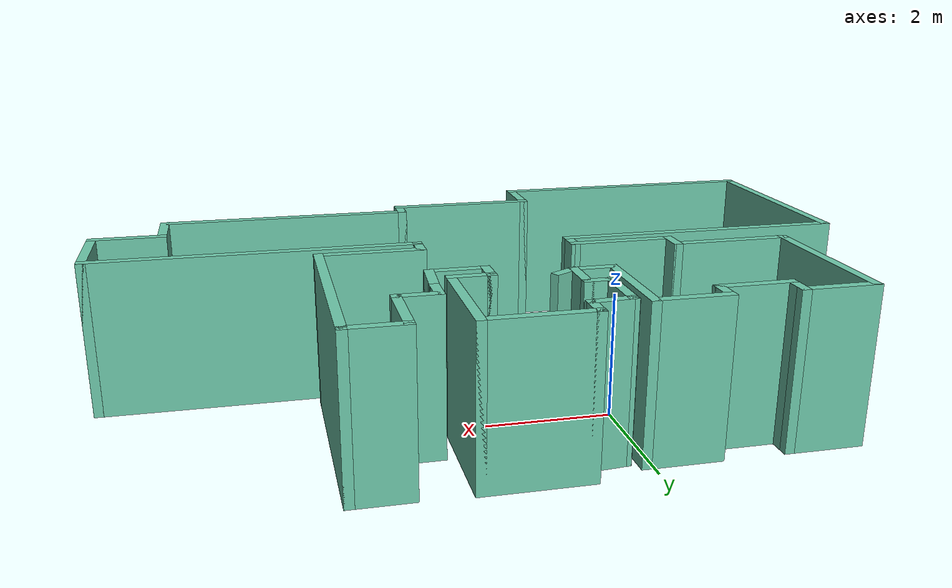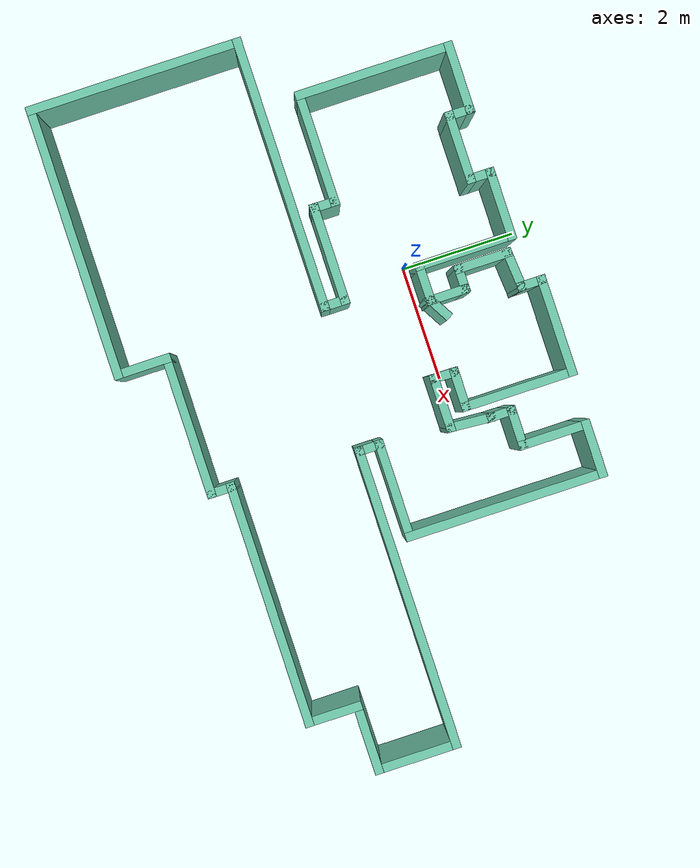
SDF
<?xml version='1.0'?>
<sdf version='1.6'>
  <model name='map_91'>
    <pose frame=''>1.74195 -1.56351 0 0 -0 0</pose>
    <link name='Wall_0'>
      <collision name='Wall_0_Collision'>
        <geometry>
          <box>
            <size>1.25 0.15 2.5</size>
          </box>
        </geometry>
        <pose frame=''>0 0 1.25 0 -0 0</pose>
      </collision>
      <visual name='Wall_0_Visual'>
        <pose frame=''>0 0 1.25 0 -0 0</pose>
        <geometry>
          <box>
            <size>1.25 0.15 2.5</size>
          </box>
        </geometry>
        <material>
          <script>
            <uri>file://media/materials/scripts/gazebo.material</uri>
            <name>Gazebo/Grey</name>
          </script>
          <ambient>0.435294 0.796078 0.67451 1</ambient>
        </material>
        <meta>
          <layer>0</layer>
        </meta>
      </visual>
      <pose frame=''>-2.175 3.325 0 0 -0 3.14159</pose>
    </link>
    <link name='Wall_1'>
      <collision name='Wall_1_Collision'>
        <geometry>
          <box>
            <size>0.5 0.15 2.5</size>
          </box>
        </geometry>
        <pose frame=''>0 0 1.25 0 -0 0</pose>
      </collision>
      <visual name='Wall_1_Visual'>
        <pose frame=''>0 0 1.25 0 -0 0</pose>
        <geometry>
          <box>
            <size>0.5 0.15 2.5</size>
          </box>
        </geometry>
        <material>
          <script>
            <uri>file://media/materials/scripts/gazebo.material</uri>
            <name>Gazebo/Grey</name>
          </script>
          <ambient>0.435294 0.796078 0.67451 1</ambient>
        </material>
        <meta>
          <layer>0</layer>
        </meta>
      </visual>
      <pose frame=''>-2.725 3.15 0 0 -0 -1.5708</pose>
    </link>
    <link name='Wall_10'>
      <collision name='Wall_10_Collision'>
        <geometry>
          <box>
            <size>4.75 0.15 2.5</size>
          </box>
        </geometry>
        <pose frame=''>0 0 1.25 0 -0 0</pose>
      </collision>
      <visual name='Wall_10_Visual'>
        <pose frame=''>0 0 1.25 0 -0 0</pose>
        <geometry>
          <box>
            <size>4.75 0.15 2.5</size>
          </box>
        </geometry>
        <material>
          <script>
            <uri>file://media/materials/scripts/gazebo.material</uri>
            <name>Gazebo/Grey</name>
          </script>
          <ambient>0.435294 0.796078 0.67451 1</ambient>
        </material>
        <meta>
          <layer>0</layer>
        </meta>
      </visual>
      <pose frame=''>-3.775 0.025 0 0 -0 3.14159</pose>
    </link>
    <link name='Wall_11'>
      <collision name='Wall_11_Collision'>
        <geometry>
          <box>
            <size>3.75 0.15 2.5</size>
          </box>
        </geometry>
        <pose frame=''>0 0 1.25 0 -0 0</pose>
      </collision>
      <visual name='Wall_11_Visual'>
        <pose frame=''>0 0 1.25 0 -0 0</pose>
        <geometry>
          <box>
            <size>3.75 0.15 2.5</size>
          </box>
        </geometry>
        <material>
          <script>
            <uri>file://media/materials/scripts/gazebo.material</uri>
            <name>Gazebo/Grey</name>
          </script>
          <ambient>0.435294 0.796078 0.67451 1</ambient>
        </material>
        <meta>
          <layer>0</layer>
        </meta>
      </visual>
      <pose frame=''>-6.075 -1.775 0 0 -0 -1.5708</pose>
    </link>
    <link name='Wall_12'>
      <collision name='Wall_12_Collision'>
        <geometry>
          <box>
            <size>4.75 0.15 2.5</size>
          </box>
        </geometry>
        <pose frame=''>0 0 1.25 0 -0 0</pose>
      </collision>
      <visual name='Wall_12_Visual'>
        <pose frame=''>0 0 1.25 0 -0 0</pose>
        <geometry>
          <box>
            <size>4.75 0.15 2.5</size>
          </box>
        </geometry>
        <material>
          <script>
            <uri>file://media/materials/scripts/gazebo.material</uri>
            <name>Gazebo/Grey</name>
          </script>
          <ambient>0.435294 0.796078 0.67451 1</ambient>
        </material>
        <meta>
          <layer>0</layer>
        </meta>
      </visual>
      <pose frame=''>-3.775 -3.575 0 0 -0 0</pose>
    </link>
    <link name='Wall_2'>
      <collision name='Wall_2_Collision'>
        <geometry>
          <box>
            <size>1.25 0.15 2.5</size>
          </box>
        </geometry>
        <pose frame=''>0 0 1.25 0 -0 0</pose>
      </collision>
      <visual name='Wall_2_Visual'>
        <pose frame=''>0 0 1.25 0 -0 0</pose>
        <geometry>
          <box>
            <size>1.25 0.15 2.5</size>
          </box>
        </geometry>
        <material>
          <script>
            <uri>file://media/materials/scripts/gazebo.material</uri>
            <name>Gazebo/Grey</name>
          </script>
          <ambient>0.435294 0.796078 0.67451 1</ambient>
        </material>
        <meta>
          <layer>0</layer>
        </meta>
      </visual>
      <pose frame=''>-3.275 2.975 0 0 -0 3.14159</pose>
    </link>
    <link name='Wall_22'>
      <collision name='Wall_22_Collision'>
        <geometry>
          <box>
            <size>1 0.15 2.5</size>
          </box>
        </geometry>
        <pose frame=''>0 0 1.25 0 -0 0</pose>
      </collision>
      <visual name='Wall_22_Visual'>
        <pose frame=''>0 0 1.25 0 -0 0</pose>
        <geometry>
          <box>
            <size>1 0.15 2.5</size>
          </box>
        </geometry>
        <material>
          <script>
            <uri>file://media/materials/scripts/gazebo.material</uri>
            <name>Gazebo/Grey</name>
          </script>
          <ambient>0.435294 0.796078 0.67451 1</ambient>
        </material>
        <meta>
          <layer>0</layer>
        </meta>
      </visual>
      <pose frame=''>-1.475 -3.15 0 0 -0 1.5708</pose>
    </link>
    <link name='Wall_23'>
      <collision name='Wall_23_Collision'>
        <geometry>
          <box>
            <size>2.5 0.15 2.5</size>
          </box>
        </geometry>
        <pose frame=''>0 0 1.25 0 -0 0</pose>
      </collision>
      <visual name='Wall_23_Visual'>
        <pose frame=''>0 0 1.25 0 -0 0</pose>
        <geometry>
          <box>
            <size>2.5 0.15 2.5</size>
          </box>
        </geometry>
        <material>
          <script>
            <uri>file://media/materials/scripts/gazebo.material</uri>
            <name>Gazebo/Grey</name>
          </script>
          <ambient>0.435294 0.796078 0.67451 1</ambient>
        </material>
        <meta>
          <layer>0</layer>
        </meta>
      </visual>
      <pose frame=''>-0.3 -2.725 0 0 -0 0</pose>
    </link>
    <link name='Wall_24'>
      <collision name='Wall_24_Collision'>
        <geometry>
          <box>
            <size>0.5 0.15 2.5</size>
          </box>
        </geometry>
        <pose frame=''>0 0 1.25 0 -0 0</pose>
      </collision>
      <visual name='Wall_24_Visual'>
        <pose frame=''>0 0 1.25 0 -0 0</pose>
        <geometry>
          <box>
            <size>0.5 0.15 2.5</size>
          </box>
        </geometry>
        <material>
          <script>
            <uri>file://media/materials/scripts/gazebo.material</uri>
            <name>Gazebo/Grey</name>
          </script>
          <ambient>0.435294 0.796078 0.67451 1</ambient>
        </material>
        <meta>
          <layer>0</layer>
        </meta>
      </visual>
      <pose frame=''>0.875 -2.55 0 0 -0 1.5708</pose>
    </link>
    <link name='Wall_25'>
      <collision name='Wall_25_Collision'>
        <geometry>
          <box>
            <size>4.25 0.15 2.5</size>
          </box>
        </geometry>
        <pose frame=''>0 0 1.25 0 -0 0</pose>
      </collision>
      <visual name='Wall_25_Visual'>
        <pose frame=''>0 0 1.25 0 -0 0</pose>
        <geometry>
          <box>
            <size>4.25 0.15 2.5</size>
          </box>
        </geometry>
        <material>
          <script>
            <uri>file://media/materials/scripts/gazebo.material</uri>
            <name>Gazebo/Grey</name>
          </script>
          <ambient>0.435294 0.796078 0.67451 1</ambient>
        </material>
        <meta>
          <layer>0</layer>
        </meta>
      </visual>
      <pose frame=''>2.925 -2.375 0 0 -0 0</pose>
    </link>
    <link name='Wall_26'>
      <collision name='Wall_26_Collision'>
        <geometry>
          <box>
            <size>1 0.15 2.5</size>
          </box>
        </geometry>
        <pose frame=''>0 0 1.25 0 -0 0</pose>
      </collision>
      <visual name='Wall_26_Visual'>
        <pose frame=''>0 0 1.25 0 -0 0</pose>
        <geometry>
          <box>
            <size>1 0.15 2.5</size>
          </box>
        </geometry>
        <material>
          <script>
            <uri>file://media/materials/scripts/gazebo.material</uri>
            <name>Gazebo/Grey</name>
          </script>
          <ambient>0.435294 0.796078 0.67451 1</ambient>
        </material>
        <meta>
          <layer>0</layer>
        </meta>
      </visual>
      <pose frame=''>4.975 -1.95 0 0 -0 1.5708</pose>
    </link>
    <link name='Wall_27'>
      <collision name='Wall_27_Collision'>
        <geometry>
          <box>
            <size>1.25 0.15 2.5</size>
          </box>
        </geometry>
        <pose frame=''>0 0 1.25 0 -0 0</pose>
      </collision>
      <visual name='Wall_27_Visual'>
        <pose frame=''>0 0 1.25 0 -0 0</pose>
        <geometry>
          <box>
            <size>1.25 0.15 2.5</size>
          </box>
        </geometry>
        <material>
          <script>
            <uri>file://media/materials/scripts/gazebo.material</uri>
            <name>Gazebo/Grey</name>
          </script>
          <ambient>0.435294 0.796078 0.67451 1</ambient>
        </material>
        <meta>
          <layer>0</layer>
        </meta>
      </visual>
      <pose frame=''>5.525 -1.525 0 0 -0 0</pose>
    </link>
    <link name='Wall_3'>
      <collision name='Wall_3_Collision'>
        <geometry>
          <box>
            <size>0.5 0.15 2.5</size>
          </box>
        </geometry>
        <pose frame=''>0 0 1.25 0 -0 0</pose>
      </collision>
      <visual name='Wall_3_Visual'>
        <pose frame=''>0 0 1.25 0 -0 0</pose>
        <geometry>
          <box>
            <size>0.5 0.15 2.5</size>
          </box>
        </geometry>
        <material>
          <script>
            <uri>file://media/materials/scripts/gazebo.material</uri>
            <name>Gazebo/Grey</name>
          </script>
          <ambient>0.435294 0.796078 0.67451 1</ambient>
        </material>
        <meta>
          <layer>0</layer>
        </meta>
      </visual>
      <pose frame=''>-3.825 3.15 0 0 -0 1.5708</pose>
    </link>
    <link name='Wall_33'>
      <collision name='Wall_33_Collision'>
        <geometry>
          <box>
            <size>1 0.15 2.5</size>
          </box>
        </geometry>
        <pose frame=''>0 0 1.25 0 -0 0</pose>
      </collision>
      <visual name='Wall_33_Visual'>
        <pose frame=''>0 0 1.25 0 -0 0</pose>
        <geometry>
          <box>
            <size>1 0.15 2.5</size>
          </box>
        </geometry>
        <material>
          <script>
            <uri>file://media/materials/scripts/gazebo.material</uri>
            <name>Gazebo/Grey</name>
          </script>
          <ambient>0.435294 0.796078 0.67451 1</ambient>
        </material>
        <meta>
          <layer>0</layer>
        </meta>
      </visual>
      <pose frame=''>2.15 3.525 0 0 -0 3.14159</pose>
    </link>
    <link name='Wall_4'>
      <collision name='Wall_4_Collision'>
        <geometry>
          <box>
            <size>1.25 0.15 2.5</size>
          </box>
        </geometry>
        <pose frame=''>0 0 1.25 0 -0 0</pose>
      </collision>
      <visual name='Wall_4_Visual'>
        <pose frame=''>0 0 1.25 0 -0 0</pose>
        <geometry>
          <box>
            <size>1.25 0.15 2.5</size>
          </box>
        </geometry>
        <material>
          <script>
            <uri>file://media/materials/scripts/gazebo.material</uri>
            <name>Gazebo/Grey</name>
          </script>
          <ambient>0.435294 0.796078 0.67451 1</ambient>
        </material>
        <meta>
          <layer>0</layer>
        </meta>
      </visual>
      <pose frame=''>-4.375 3.325 0 0 -0 3.14159</pose>
    </link>
    <link name='Wall_45'>
      <collision name='Wall_45_Collision'>
        <geometry>
          <box>
            <size>1.25 0.15 2.5</size>
          </box>
        </geometry>
        <pose frame=''>0 0 1.25 0 -0 0</pose>
      </collision>
      <visual name='Wall_45_Visual'>
        <pose frame=''>0 0 1.25 0 -0 0</pose>
        <geometry>
          <box>
            <size>1.25 0.15 2.5</size>
          </box>
        </geometry>
        <material>
          <script>
            <uri>file://media/materials/scripts/gazebo.material</uri>
            <name>Gazebo/Grey</name>
          </script>
          <ambient>0.435294 0.796078 0.67451 1</ambient>
        </material>
        <meta>
          <layer>0</layer>
        </meta>
      </visual>
      <pose frame=''>1.725 2.975 0 0 -0 -1.5708</pose>
    </link>
    <link name='Wall_46'>
      <collision name='Wall_46_Collision'>
        <geometry>
          <box>
            <size>0.75 0.15 2.5</size>
          </box>
        </geometry>
        <pose frame=''>0 0 1.25 0 -0 0</pose>
      </collision>
      <visual name='Wall_46_Visual'>
        <pose frame=''>0 0 1.25 0 -0 0</pose>
        <geometry>
          <box>
            <size>0.75 0.15 2.5</size>
          </box>
        </geometry>
        <material>
          <script>
            <uri>file://media/materials/scripts/gazebo.material</uri>
            <name>Gazebo/Grey</name>
          </script>
          <ambient>0.435294 0.796078 0.67451 1</ambient>
        </material>
        <meta>
          <layer>0</layer>
        </meta>
      </visual>
      <pose frame=''>1.425 2.425 0 0 -0 3.14159</pose>
    </link>
    <link name='Wall_47'>
      <collision name='Wall_47_Collision'>
        <geometry>
          <box>
            <size>0.5 0.15 2.5</size>
          </box>
        </geometry>
        <pose frame=''>0 0 1.25 0 -0 0</pose>
      </collision>
      <visual name='Wall_47_Visual'>
        <pose frame=''>0 0 1.25 0 -0 0</pose>
        <geometry>
          <box>
            <size>0.5 0.15 2.5</size>
          </box>
        </geometry>
        <material>
          <script>
            <uri>file://media/materials/scripts/gazebo.material</uri>
            <name>Gazebo/Grey</name>
          </script>
          <ambient>0.435294 0.796078 0.67451 1</ambient>
        </material>
        <meta>
          <layer>0</layer>
        </meta>
      </visual>
      <pose frame=''>1.125 2.25 0 0 -0 -1.5708</pose>
    </link>
    <link name='Wall_5'>
      <collision name='Wall_5_Collision'>
        <geometry>
          <box>
            <size>2.75 0.15 2.5</size>
          </box>
        </geometry>
        <pose frame=''>0 0 1.25 0 -0 0</pose>
      </collision>
      <visual name='Wall_5_Visual'>
        <pose frame=''>0 0 1.25 0 -0 0</pose>
        <geometry>
          <box>
            <size>2.75 0.15 2.5</size>
          </box>
        </geometry>
        <material>
          <script>
            <uri>file://media/materials/scripts/gazebo.material</uri>
            <name>Gazebo/Grey</name>
          </script>
          <ambient>0.435294 0.796078 0.67451 1</ambient>
        </material>
        <meta>
          <layer>0</layer>
        </meta>
      </visual>
      <pose frame=''>-4.925 2.025 0 0 -0 -1.5708</pose>
    </link>
    <link name='Wall_6'>
      <collision name='Wall_6_Collision'>
        <geometry>
          <box>
            <size>2 0.15 2.5</size>
          </box>
        </geometry>
        <pose frame=''>0 0 1.25 0 -0 0</pose>
      </collision>
      <visual name='Wall_6_Visual'>
        <pose frame=''>0 0 1.25 0 -0 0</pose>
        <geometry>
          <box>
            <size>2 0.15 2.5</size>
          </box>
        </geometry>
        <material>
          <script>
            <uri>file://media/materials/scripts/gazebo.material</uri>
            <name>Gazebo/Grey</name>
          </script>
          <ambient>0.435294 0.796078 0.67451 1</ambient>
        </material>
        <meta>
          <layer>0</layer>
        </meta>
      </visual>
      <pose frame=''>-4 0.725 0 0 -0 0</pose>
    </link>
    <link name='Wall_63'>
      <collision name='Wall_63_Collision'>
        <geometry>
          <box>
            <size>0.5 0.15 2.5</size>
          </box>
        </geometry>
        <pose frame=''>0 0 1.25 0 -0 0</pose>
      </collision>
      <visual name='Wall_63_Visual'>
        <pose frame=''>0 0 1.25 0 -0 0</pose>
        <geometry>
          <box>
            <size>0.5 0.15 2.5</size>
          </box>
        </geometry>
        <material>
          <script>
            <uri>file://media/materials/scripts/gazebo.material</uri>
            <name>Gazebo/Grey</name>
          </script>
          <ambient>0.435294 0.796078 0.67451 1</ambient>
        </material>
        <meta>
          <layer>0</layer>
        </meta>
      </visual>
      <pose frame=''>-0.775 3.4 0 0 -0 1.5708</pose>
    </link>
    <link name='Wall_64'>
      <collision name='Wall_64_Collision'>
        <geometry>
          <box>
            <size>1.75 0.15 2.5</size>
          </box>
        </geometry>
        <pose frame=''>0 0 1.25 0 -0 0</pose>
      </collision>
      <visual name='Wall_64_Visual'>
        <pose frame=''>0 0 1.25 0 -0 0</pose>
        <geometry>
          <box>
            <size>1.75 0.15 2.5</size>
          </box>
        </geometry>
        <material>
          <script>
            <uri>file://media/materials/scripts/gazebo.material</uri>
            <name>Gazebo/Grey</name>
          </script>
          <ambient>0.435294 0.796078 0.67451 1</ambient>
        </material>
        <meta>
          <layer>0</layer>
        </meta>
      </visual>
      <pose frame=''>0.025 3.575 0 0 -0 0</pose>
    </link>
    <link name='Wall_65'>
      <collision name='Wall_65_Collision'>
        <geometry>
          <box>
            <size>2 0.15 2.5</size>
          </box>
        </geometry>
        <pose frame=''>0 0 1.25 0 -0 0</pose>
      </collision>
      <visual name='Wall_65_Visual'>
        <pose frame=''>0 0 1.25 0 -0 0</pose>
        <geometry>
          <box>
            <size>2 0.15 2.5</size>
          </box>
        </geometry>
        <material>
          <script>
            <uri>file://media/materials/scripts/gazebo.material</uri>
            <name>Gazebo/Grey</name>
          </script>
          <ambient>0.435294 0.796078 0.67451 1</ambient>
        </material>
        <meta>
          <layer>0</layer>
        </meta>
      </visual>
      <pose frame=''>0.825 2.65 0 0 -0 -1.5708</pose>
    </link>
    <link name='Wall_66'>
      <collision name='Wall_66_Collision'>
        <geometry>
          <box>
            <size>0.75 0.15 2.5</size>
          </box>
        </geometry>
        <pose frame=''>0 0 1.25 0 -0 0</pose>
      </collision>
      <visual name='Wall_66_Visual'>
        <pose frame=''>0 0 1.25 0 -0 0</pose>
        <geometry>
          <box>
            <size>0.75 0.15 2.5</size>
          </box>
        </geometry>
        <material>
          <script>
            <uri>file://media/materials/scripts/gazebo.material</uri>
            <name>Gazebo/Grey</name>
          </script>
          <ambient>0.435294 0.796078 0.67451 1</ambient>
        </material>
        <meta>
          <layer>0</layer>
        </meta>
      </visual>
      <pose frame=''>0.525 1.725 0 0 -0 3.14159</pose>
    </link>
    <link name='Wall_69'>
      <collision name='Wall_69_Collision'>
        <geometry>
          <box>
            <size>0.5 0.15 2.5</size>
          </box>
        </geometry>
        <pose frame=''>0 0 1.25 0 -0 0</pose>
      </collision>
      <visual name='Wall_69_Visual'>
        <pose frame=''>0 0 1.25 0 -0 0</pose>
        <geometry>
          <box>
            <size>0.5 0.15 2.5</size>
          </box>
        </geometry>
        <material>
          <script>
            <uri>file://media/materials/scripts/gazebo.material</uri>
            <name>Gazebo/Grey</name>
          </script>
          <ambient>0.435294 0.796078 0.67451 1</ambient>
        </material>
        <meta>
          <layer>0</layer>
        </meta>
      </visual>
      <pose frame=''>0.225 1.55 0 0 -0 -1.5708</pose>
    </link>
    <link name='Wall_7'>
      <collision name='Wall_7_Collision'>
        <geometry>
          <box>
            <size>0.5 0.15 2.5</size>
          </box>
        </geometry>
        <pose frame=''>0 0 1.25 0 -0 0</pose>
      </collision>
      <visual name='Wall_7_Visual'>
        <pose frame=''>0 0 1.25 0 -0 0</pose>
        <geometry>
          <box>
            <size>0.5 0.15 2.5</size>
          </box>
        </geometry>
        <material>
          <script>
            <uri>file://media/materials/scripts/gazebo.material</uri>
            <name>Gazebo/Grey</name>
          </script>
          <ambient>0.435294 0.796078 0.67451 1</ambient>
        </material>
        <meta>
          <layer>0</layer>
        </meta>
      </visual>
      <pose frame=''>-3.075 0.55 0 0 -0 -1.5708</pose>
    </link>
    <link name='Wall_70'>
      <collision name='Wall_70_Collision'>
        <geometry>
          <box>
            <size>1 0.15 2.5</size>
          </box>
        </geometry>
        <pose frame=''>0 0 1.25 0 -0 0</pose>
      </collision>
      <visual name='Wall_70_Visual'>
        <pose frame=''>0 0 1.25 0 -0 0</pose>
        <geometry>
          <box>
            <size>1 0.15 2.5</size>
          </box>
        </geometry>
        <material>
          <script>
            <uri>file://media/materials/scripts/gazebo.material</uri>
            <name>Gazebo/Grey</name>
          </script>
          <ambient>0.435294 0.796078 0.67451 1</ambient>
        </material>
        <meta>
          <layer>0</layer>
        </meta>
      </visual>
      <pose frame=''>0.65 1.375 0 0 -0 0</pose>
    </link>
    <link name='Wall_71'>
      <collision name='Wall_71_Collision'>
        <geometry>
          <box>
            <size>0.851783 0.15 2.5</size>
          </box>
        </geometry>
        <pose frame=''>0 0 1.25 0 -0 0</pose>
      </collision>
      <visual name='Wall_71_Visual'>
        <pose frame=''>0 0 1.25 0 -0 0</pose>
        <geometry>
          <box>
            <size>0.851783 0.15 2.5</size>
          </box>
        </geometry>
        <material>
          <script>
            <uri>file://media/materials/scripts/gazebo.material</uri>
            <name>Gazebo/Grey</name>
          </script>
          <ambient>0.435294 0.796078 0.67451 1</ambient>
        </material>
        <meta>
          <layer>0</layer>
        </meta>
      </visual>
      <pose frame=''>1.1 1.725 0 0 -0 1.49949</pose>
    </link>
    <link name='Wall_73'>
      <collision name='Wall_73_Collision'>
        <geometry>
          <box>
            <size>3.5 0.15 2.5</size>
          </box>
        </geometry>
        <pose frame=''>0 0 1.25 0 -0 0</pose>
      </collision>
      <visual name='Wall_73_Visual'>
        <pose frame=''>0 0 1.25 0 -0 0</pose>
        <geometry>
          <box>
            <size>3.5 0.15 2.5</size>
          </box>
        </geometry>
        <material>
          <script>
            <uri>file://media/materials/scripts/gazebo.material</uri>
            <name>Gazebo/Grey</name>
          </script>
          <ambient>0.435294 0.796078 0.67451 1</ambient>
        </material>
        <meta>
          <layer>0</layer>
        </meta>
      </visual>
      <pose frame=''>2.575 1.85 0 0 -0 -1.5708</pose>
    </link>
    <link name='Wall_74'>
      <collision name='Wall_74_Collision'>
        <geometry>
          <box>
            <size>1.75 0.15 2.5</size>
          </box>
        </geometry>
        <pose frame=''>0 0 1.25 0 -0 0</pose>
      </collision>
      <visual name='Wall_74_Visual'>
        <pose frame=''>0 0 1.25 0 -0 0</pose>
        <geometry>
          <box>
            <size>1.75 0.15 2.5</size>
          </box>
        </geometry>
        <material>
          <script>
            <uri>file://media/materials/scripts/gazebo.material</uri>
            <name>Gazebo/Grey</name>
          </script>
          <ambient>0.435294 0.796078 0.67451 1</ambient>
        </material>
        <meta>
          <layer>0</layer>
        </meta>
      </visual>
      <pose frame=''>1.775 0.175 0 0 -0 3.14159</pose>
    </link>
    <link name='Wall_75'>
      <collision name='Wall_75_Collision'>
        <geometry>
          <box>
            <size>0.5 0.15 2.5</size>
          </box>
        </geometry>
        <pose frame=''>0 0 1.25 0 -0 0</pose>
      </collision>
      <visual name='Wall_75_Visual'>
        <pose frame=''>0 0 1.25 0 -0 0</pose>
        <geometry>
          <box>
            <size>0.5 0.15 2.5</size>
          </box>
        </geometry>
        <material>
          <script>
            <uri>file://media/materials/scripts/gazebo.material</uri>
            <name>Gazebo/Grey</name>
          </script>
          <ambient>0.435294 0.796078 0.67451 1</ambient>
        </material>
        <meta>
          <layer>0</layer>
        </meta>
      </visual>
      <pose frame=''>0.975 0 0 0 -0 -1.5708</pose>
    </link>
    <link name='Wall_77'>
      <collision name='Wall_77_Collision'>
        <geometry>
          <box>
            <size>5.25 0.15 2.5</size>
          </box>
        </geometry>
        <pose frame=''>0 0 1.25 0 -0 0</pose>
      </collision>
      <visual name='Wall_77_Visual'>
        <pose frame=''>0 0 1.25 0 -0 0</pose>
        <geometry>
          <box>
            <size>5.25 0.15 2.5</size>
          </box>
        </geometry>
        <material>
          <script>
            <uri>file://media/materials/scripts/gazebo.material</uri>
            <name>Gazebo/Grey</name>
          </script>
          <ambient>0.435294 0.796078 0.67451 1</ambient>
        </material>
        <meta>
          <layer>0</layer>
        </meta>
      </visual>
      <pose frame=''>3.525 -0.175 0 0 -0 0</pose>
    </link>
    <link name='Wall_78'>
      <collision name='Wall_78_Collision'>
        <geometry>
          <box>
            <size>1.5 0.15 2.5</size>
          </box>
        </geometry>
        <pose frame=''>0 0 1.25 0 -0 0</pose>
      </collision>
      <visual name='Wall_78_Visual'>
        <pose frame=''>0 0 1.25 0 -0 0</pose>
        <geometry>
          <box>
            <size>1.5 0.15 2.5</size>
          </box>
        </geometry>
        <material>
          <script>
            <uri>file://media/materials/scripts/gazebo.material</uri>
            <name>Gazebo/Grey</name>
          </script>
          <ambient>0.435294 0.796078 0.67451 1</ambient>
        </material>
        <meta>
          <layer>0</layer>
        </meta>
      </visual>
      <pose frame=''>6.075 -0.85 0 0 -0 -1.5708</pose>
    </link>
    <link name='Wall_8'>
      <collision name='Wall_8_Collision'>
        <geometry>
          <box>
            <size>1.75 0.15 2.5</size>
          </box>
        </geometry>
        <pose frame=''>0 0 1.25 0 -0 0</pose>
      </collision>
      <visual name='Wall_8_Visual'>
        <pose frame=''>0 0 1.25 0 -0 0</pose>
        <geometry>
          <box>
            <size>1.75 0.15 2.5</size>
          </box>
        </geometry>
        <material>
          <script>
            <uri>file://media/materials/scripts/gazebo.material</uri>
            <name>Gazebo/Grey</name>
          </script>
          <ambient>0.435294 0.796078 0.67451 1</ambient>
        </material>
        <meta>
          <layer>0</layer>
        </meta>
      </visual>
      <pose frame=''>-2.275 0.375 0 0 -0 0</pose>
    </link>
    <link name='Wall_83'>
      <collision name='Wall_83_Collision'>
        <geometry>
          <box>
            <size>1.75 0.15 2.5</size>
          </box>
        </geometry>
        <pose frame=''>0 0 1.25 0 -0 0</pose>
      </collision>
      <visual name='Wall_83_Visual'>
        <pose frame=''>0 0 1.25 0 -0 0</pose>
        <geometry>
          <box>
            <size>1.75 0.15 2.5</size>
          </box>
        </geometry>
        <material>
          <script>
            <uri>file://media/materials/scripts/gazebo.material</uri>
            <name>Gazebo/Grey</name>
          </script>
          <ambient>0.435294 0.796078 0.67451 1</ambient>
        </material>
        <meta>
          <layer>0</layer>
        </meta>
      </visual>
      <pose frame=''>-1.625 2.525 0 0 -0 -1.5708</pose>
    </link>
    <link name='Wall_84'>
      <collision name='Wall_84_Collision'>
        <geometry>
          <box>
            <size>0.75 0.15 2.5</size>
          </box>
        </geometry>
        <pose frame=''>0 0 1.25 0 -0 0</pose>
      </collision>
      <visual name='Wall_84_Visual'>
        <pose frame=''>0 0 1.25 0 -0 0</pose>
        <geometry>
          <box>
            <size>0.75 0.15 2.5</size>
          </box>
        </geometry>
        <material>
          <script>
            <uri>file://media/materials/scripts/gazebo.material</uri>
            <name>Gazebo/Grey</name>
          </script>
          <ambient>0.435294 0.796078 0.67451 1</ambient>
        </material>
        <meta>
          <layer>0</layer>
        </meta>
      </visual>
      <pose frame=''>-1.325 1.725 0 0 -0 0</pose>
    </link>
    <link name='Wall_85'>
      <collision name='Wall_85_Collision'>
        <geometry>
          <box>
            <size>0.75 0.15 2.5</size>
          </box>
        </geometry>
        <pose frame=''>0 0 1.25 0 -0 0</pose>
      </collision>
      <visual name='Wall_85_Visual'>
        <pose frame=''>0 0 1.25 0 -0 0</pose>
        <geometry>
          <box>
            <size>0.75 0.15 2.5</size>
          </box>
        </geometry>
        <material>
          <script>
            <uri>file://media/materials/scripts/gazebo.material</uri>
            <name>Gazebo/Grey</name>
          </script>
          <ambient>0.435294 0.796078 0.67451 1</ambient>
        </material>
        <meta>
          <layer>0</layer>
        </meta>
      </visual>
      <pose frame=''>-1.025 2.025 0 0 -0 1.5708</pose>
    </link>
    <link name='Wall_86'>
      <collision name='Wall_86_Collision'>
        <geometry>
          <box>
            <size>0.5 0.15 2.5</size>
          </box>
        </geometry>
        <pose frame=''>0 0 1.25 0 -0 0</pose>
      </collision>
      <visual name='Wall_86_Visual'>
        <pose frame=''>0 0 1.25 0 -0 0</pose>
        <geometry>
          <box>
            <size>0.5 0.15 2.5</size>
          </box>
        </geometry>
        <material>
          <script>
            <uri>file://media/materials/scripts/gazebo.material</uri>
            <name>Gazebo/Grey</name>
          </script>
          <ambient>0.435294 0.796078 0.67451 1</ambient>
        </material>
        <meta>
          <layer>0</layer>
        </meta>
      </visual>
      <pose frame=''>-1.2 2.325 0 0 -0 3.14159</pose>
    </link>
    <link name='Wall_89'>
      <collision name='Wall_89_Collision'>
        <geometry>
          <box>
            <size>1 0.15 2.5</size>
          </box>
        </geometry>
        <pose frame=''>0 0 1.25 0 -0 0</pose>
      </collision>
      <visual name='Wall_89_Visual'>
        <pose frame=''>0 0 1.25 0 -0 0</pose>
        <geometry>
          <box>
            <size>1 0.15 2.5</size>
          </box>
        </geometry>
        <material>
          <script>
            <uri>file://media/materials/scripts/gazebo.material</uri>
            <name>Gazebo/Grey</name>
          </script>
          <ambient>0.435294 0.796078 0.67451 1</ambient>
        </material>
        <meta>
          <layer>0</layer>
        </meta>
      </visual>
      <pose frame=''>-1.375 2.75 0 0 -0 1.5708</pose>
    </link>
    <link name='Wall_9'>
      <collision name='Wall_9_Collision'>
        <geometry>
          <box>
            <size>0.5 0.15 2.5</size>
          </box>
        </geometry>
        <pose frame=''>0 0 1.25 0 -0 0</pose>
      </collision>
      <visual name='Wall_9_Visual'>
        <pose frame=''>0 0 1.25 0 -0 0</pose>
        <geometry>
          <box>
            <size>0.5 0.15 2.5</size>
          </box>
        </geometry>
        <material>
          <script>
            <uri>file://media/materials/scripts/gazebo.material</uri>
            <name>Gazebo/Grey</name>
          </script>
          <ambient>0.435294 0.796078 0.67451 1</ambient>
        </material>
        <meta>
          <layer>0</layer>
        </meta>
      </visual>
      <pose frame=''>-1.475 0.2 0 0 -0 -1.5708</pose>
    </link>
    <link name='Wall_90'>
      <collision name='Wall_90_Collision'>
        <geometry>
          <box>
            <size>0.75208 0.15 2.5</size>
          </box>
        </geometry>
        <pose frame=''>0 0 1.25 0 -0 0</pose>
      </collision>
      <visual name='Wall_90_Visual'>
        <pose frame=''>0 0 1.25 0 -0 0</pose>
        <geometry>
          <box>
            <size>0.75208 0.15 2.5</size>
          </box>
        </geometry>
        <material>
          <script>
            <uri>file://media/materials/scripts/gazebo.material</uri>
            <name>Gazebo/Grey</name>
          </script>
          <ambient>0.435294 0.796078 0.67451 1</ambient>
        </material>
        <meta>
          <layer>0</layer>
        </meta>
      </visual>
      <pose frame=''>-1.075 3.2 0 0 -0 0.083141</pose>
    </link>
    <link name='Wall_92'>
      <collision name='Wall_92_Collision'>
        <geometry>
          <box>
            <size>0.5 0.15 2.5</size>
          </box>
        </geometry>
        <pose frame=''>0 0 1.25 0 -0 0</pose>
      </collision>
      <visual name='Wall_92_Visual'>
        <pose frame=''>0 0 1.25 0 -0 0</pose>
        <geometry>
          <box>
            <size>0.5 0.15 2.5</size>
          </box>
        </geometry>
        <material>
          <script>
            <uri>file://media/materials/scripts/gazebo.material</uri>
            <name>Gazebo/Grey</name>
          </script>
          <ambient>0.435294 0.796078 0.67451 1</ambient>
        </material>
        <meta>
          <layer>0</layer>
        </meta>
      </visual>
      <pose frame=''>-0.873445 1.8125 0 0 -0 0.523599</pose>
    </link>
    <static>1</static>
  </model>
</sdf>
